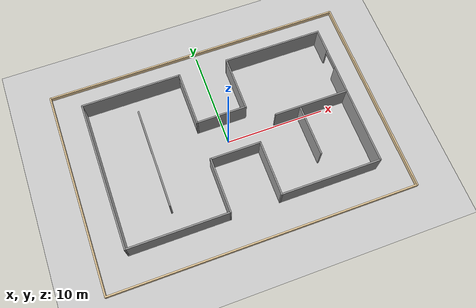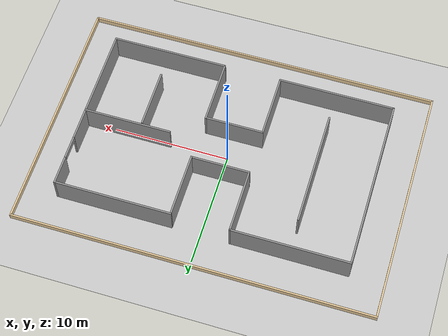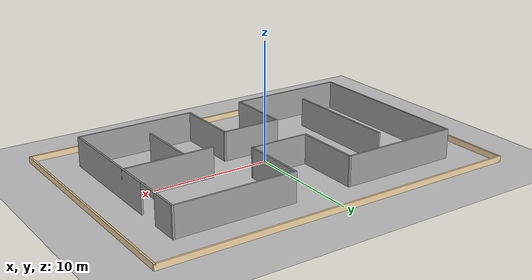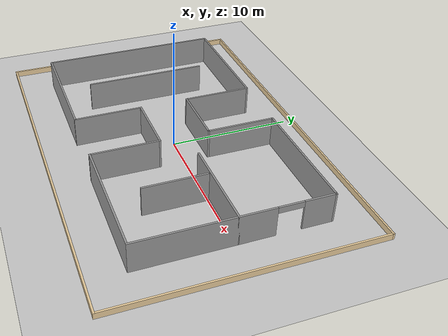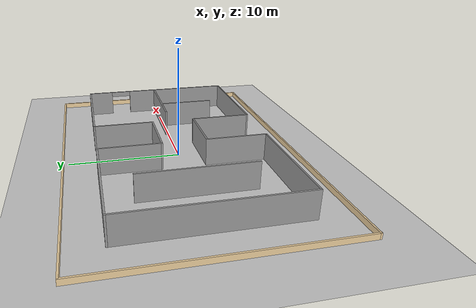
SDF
<sdf version="1.6">
 <world name="default">
  <light name="sun" type="directional">
   <pose>0 0 10 0 -0 0</pose>
   <diffuse>0.8 0.8 0.8 1</diffuse>
   <specular>0.2 0.2 0.2 1</specular>
   <attenuation>
    <range>1000</range>
    <constant>0.9</constant>
    <linear>0.01</linear>
    <quadratic>0.001</quadratic>
   </attenuation>
   <direction>-0.5 0.1 -0.9</direction>
  </light>
  <model name="ground_plane">
   <static>1</static>
   <link name="link">
    <collision name="collision">
     <geometry><plane><normal>0 0 1</normal><size>100 100</size></plane></geometry>
     <surface>
      <contact><collide_bitmask>65535</collide_bitmask></contact>
      <friction><ode><mu>100</mu><mu2>50</mu2></ode></friction>
     </surface>
    </collision>
    <visual name="visual">
     <cast_shadows>0</cast_shadows>
     <geometry><plane><normal>0 0 1</normal><size>100 100</size></plane></geometry>
     <material>
      <script><uri>file://media/materials/scripts/gazebo.material</uri><name>Gazebo/Grey</name></script>
     </material>
    </visual>
   </link>
  </model>
  <gravity>0 0 -9.8</gravity>
  <magnetic_field>6e-06 2.3e-05 -4.2e-05</magnetic_field>
  <atmosphere type="adiabatic"/>
  <physics name="default_physics" default="0" type="ode">
   <max_step_size>0.001</max_step_size>
   <real_time_factor>1</real_time_factor>
   <real_time_update_rate>1000</real_time_update_rate>
  </physics>
  <scene><ambient>0.4 0.4 0.4 1</ambient><background>0.7 0.7 0.7 1</background><shadows>1</shadows></scene>
  <audio><device>default</device></audio>
  <spherical_coordinates>
   <surface_model>EARTH_WGS84</surface_model>
   <latitude_deg>0</latitude_deg>
   <longitude_deg>0</longitude_deg>
   <elevation>0</elevation>
   <heading_deg>0</heading_deg>
  </spherical_coordinates>
  <model name="indoor_layout">
   <link name="Wall_0">
    <pose>12.5 0 0 0 -0 1.5708</pose>
    <visual name="Wall_0_Visual_0">
     <pose>-2.25008 0 1.25 0 -0 0</pose>
     <geometry><box><size>10.6498 0.15 2.5</size></box></geometry>
     <material>
      <script><uri>file://media/materials/scripts/gazebo.material</uri><name>Gazebo/Grey</name></script>
      <ambient>1 1 1 1</ambient>
     </material>
     <meta><layer>0</layer></meta>
    </visual>
    <collision name="Wall_0_Collision_0">
     <geometry><box><size>10.6498 0.15 2.5</size></box></geometry>
     <pose>-2.25008 0 1.25 0 -0 0</pose>
    </collision>
    <visual name="Wall_0_Visual_1">
     <pose>6.32492 0 1.25 0 -0 0</pose>
     <geometry><box><size>2.50017 0.15 2.5</size></box></geometry>
     <material>
      <script><uri>file://media/materials/scripts/gazebo.material</uri><name>Gazebo/Grey</name></script>
      <ambient>1 1 1 1</ambient>
     </material>
     <meta><layer>0</layer></meta>
    </visual>
    <collision name="Wall_0_Collision_1">
     <geometry><box><size>2.50017 0.15 2.5</size></box></geometry>
     <pose>6.32492 0 1.25 0 -0 0</pose>
    </collision>
    <visual name="Wall_0_Visual_2">
     <pose>4.07483 0 2.25 0 -0 0</pose>
     <geometry><box><size>2 0.15 0.5</size></box></geometry>
     <material>
      <script><uri>file://media/materials/scripts/gazebo.material</uri><name>Gazebo/Grey</name></script>
      <ambient>1 1 1 1</ambient>
     </material>
     <meta><layer>0</layer></meta>
    </visual>
    <collision name="Wall_0_Collision_2">
     <geometry><box><size>2 0.15 0.5</size></box></geometry>
     <pose>4.07483 0 2.25 0 -0 0</pose>
    </collision>
   </link>
   <link name="Wall_10">
    <collision name="Wall_10_Collision">
     <geometry><box><size>5.15 0.15 2.5</size></box></geometry>
     <pose>0 0 1.25 0 -0 0</pose>
    </collision>
    <visual name="Wall_10_Visual">
     <pose>0 0 1.25 0 -0 0</pose>
     <geometry><box><size>5.15 0.15 2.5</size></box></geometry>
     <material>
      <script><uri>file://media/materials/scripts/gazebo.material</uri><name>Gazebo/Grey</name></script>
      <ambient>1 1 1 1</ambient>
     </material>
     <meta><layer>0</layer></meta>
    </visual>
    <pose>-0 -2 0 0 -0 3.14159</pose>
   </link>
   <link name="Wall_12">
    <collision name="Wall_12_Collision">
     <geometry><box><size>5.15 0.15 2.5</size></box></geometry>
     <pose>0 0 1.25 0 -0 0</pose>
    </collision>
    <visual name="Wall_12_Visual">
     <pose>0 0 1.25 0 -0 0</pose>
     <geometry><box><size>5.15 0.15 2.5</size></box></geometry>
     <material>
      <script><uri>file://media/materials/scripts/gazebo.material</uri><name>Gazebo/Grey</name></script>
      <ambient>1 1 1 1</ambient>
     </material>
     <meta><layer>0</layer></meta>
    </visual>
    <pose>-0 2 0 0 -0 3.14159</pose>
   </link>
   <link name="Wall_14">
    <collision name="Wall_14_Collision">
     <geometry><box><size>5.65 0.15 2.5</size></box></geometry>
     <pose>0 0 1.25 0 -0 0</pose>
    </collision>
    <visual name="Wall_14_Visual">
     <pose>0 0 1.25 0 -0 0</pose>
     <geometry><box><size>5.65 0.15 2.5</size></box></geometry>
     <material>
      <script><uri>file://media/materials/scripts/gazebo.material</uri><name>Gazebo/Grey</name></script>
      <ambient>1 1 1 1</ambient>
     </material>
     <meta><layer>0</layer></meta>
    </visual>
    <pose>-2.5 -4.75 0 0 -0 1.5708</pose>
   </link>
   <link name="Wall_16">
    <collision name="Wall_16_Collision">
     <geometry><box><size>10.15 0.15 2.5</size></box></geometry>
     <pose>0 0 1.25 0 -0 0</pose>
    </collision>
    <visual name="Wall_16_Visual">
     <pose>0 0 1.25 0 -0 0</pose>
     <geometry><box><size>10.15 0.15 2.5</size></box></geometry>
     <material>
      <script><uri>file://media/materials/scripts/gazebo.material</uri><name>Gazebo/Grey</name></script>
      <ambient>1 1 1 1</ambient>
     </material>
     <meta><layer>0</layer></meta>
    </visual>
    <pose>-7.5 -7.5 0 0 -0 0</pose>
   </link>
   <link name="Wall_18">
    <collision name="Wall_18_Collision">
     <geometry><box><size>15.15 0.15 2.5</size></box></geometry>
     <pose>0 0 1.25 0 -0 0</pose>
    </collision>
    <visual name="Wall_18_Visual">
     <pose>0 0 1.25 0 -0 0</pose>
     <geometry><box><size>15.15 0.15 2.5</size></box></geometry>
     <material>
      <script><uri>file://media/materials/scripts/gazebo.material</uri><name>Gazebo/Grey</name></script>
      <ambient>1 1 1 1</ambient>
     </material>
     <meta><layer>0</layer></meta>
    </visual>
    <pose>-12.5 0 0 0 -0 -1.5708</pose>
   </link>
   <link name="Wall_2">
    <collision name="Wall_2_Collision">
     <geometry><box><size>10.15 0.15 2.5</size></box></geometry>
     <pose>0 0 1.25 0 -0 0</pose>
    </collision>
    <visual name="Wall_2_Visual">
     <pose>0 0 1.25 0 -0 0</pose>
     <geometry><box><size>10.15 0.15 2.5</size></box></geometry>
     <material>
      <script><uri>file://media/materials/scripts/gazebo.material</uri><name>Gazebo/Grey</name></script>
      <ambient>1 1 1 1</ambient>
     </material>
     <meta><layer>0</layer></meta>
    </visual>
    <pose>7.5 -7.5 0 0 -0 3.14159</pose>
   </link>
   <link name="Wall_20">
    <collision name="Wall_20_Collision">
     <geometry><box><size>10.15 0.15 2.5</size></box></geometry>
     <pose>0 0 1.25 0 -0 0</pose>
    </collision>
    <visual name="Wall_20_Visual">
     <pose>0 0 1.25 0 -0 0</pose>
     <geometry><box><size>10.15 0.15 2.5</size></box></geometry>
     <material>
      <script><uri>file://media/materials/scripts/gazebo.material</uri><name>Gazebo/Grey</name></script>
      <ambient>1 1 1 1</ambient>
     </material>
     <meta><layer>0</layer></meta>
    </visual>
    <pose>-7.5 7.5 0 0 -0 3.14159</pose>
   </link>
   <link name="Wall_22">
    <collision name="Wall_22_Collision">
     <geometry><box><size>5.65 0.15 2.5</size></box></geometry>
     <pose>0 0 1.25 0 -0 0</pose>
    </collision>
    <visual name="Wall_22_Visual">
     <pose>0 0 1.25 0 -0 0</pose>
     <geometry><box><size>5.65 0.15 2.5</size></box></geometry>
     <material>
      <script><uri>file://media/materials/scripts/gazebo.material</uri><name>Gazebo/Grey</name></script>
      <ambient>1 1 1 1</ambient>
     </material>
     <meta><layer>0</layer></meta>
    </visual>
    <pose>-2.5 4.75 0 0 -0 1.5708</pose>
   </link>
   <link name="Wall_24">
    <collision name="Wall_24_Collision">
     <geometry><box><size>7.65 0.15 2.5</size></box></geometry>
     <pose>0 0 1.25 0 -0 0</pose>
    </collision>
    <visual name="Wall_24_Visual">
     <pose>0 0 1.25 0 -0 0</pose>
     <geometry><box><size>7.65 0.15 2.5</size></box></geometry>
     <material>
      <script><uri>file://media/materials/scripts/gazebo.material</uri><name>Gazebo/Grey</name></script>
      <ambient>1 1 1 1</ambient>
     </material>
     <meta><layer>0</layer></meta>
    </visual>
    <pose>8.75 0.221 0 0 -0 0</pose>
   </link>
   <link name="Wall_26">
    <collision name="Wall_26_Collision">
     <geometry><box><size>5.15 0.15 2.5</size></box></geometry>
     <pose>0 0 1.25 0 -0 0</pose>
    </collision>
    <visual name="Wall_26_Visual">
     <pose>0 0 1.25 0 -0 0</pose>
     <geometry><box><size>5.15 0.15 2.5</size></box></geometry>
     <material>
      <script><uri>file://media/materials/scripts/gazebo.material</uri><name>Gazebo/Grey</name></script>
      <ambient>1 1 1 1</ambient>
     </material>
     <meta><layer>0</layer></meta>
    </visual>
    <pose>7.5 -2.5 0 0 -0 -1.5708</pose>
   </link>
   <link name="Wall_28">
    <collision name="Wall_28_Collision">
     <geometry><box><size>10.15 0.15 2.5</size></box></geometry>
     <pose>0 0 1.25 0 -0 0</pose>
    </collision>
    <visual name="Wall_28_Visual">
     <pose>0 0 1.25 0 -0 0</pose>
     <geometry><box><size>10.15 0.15 2.5</size></box></geometry>
     <material>
      <script><uri>file://media/materials/scripts/gazebo.material</uri><name>Gazebo/Grey</name></script>
      <ambient>1 1 1 1</ambient>
     </material>
     <meta><layer>0</layer></meta>
    </visual>
    <pose>-7.5 0 0 0 -0 1.5708</pose>
   </link>
   <link name="Wall_30">
    <collision name="Wall_30_Collision">
     <geometry><box><size>31.15 0.15 0.5</size></box></geometry>
     <pose>0 0 0.25 0 -0 0</pose>
    </collision>
    <visual name="Wall_30_Visual">
     <pose>0 0 0.25 0 -0 0</pose>
     <geometry><box><size>31.15 0.15 0.5</size></box></geometry>
     <material>
      <script><uri>file://media/materials/scripts/gazebo.material</uri><name>Gazebo/Grey</name></script>
      <ambient>0.921569 0.807843 0.615686 1</ambient>
     </material>
     <meta><layer>0</layer></meta>
    </visual>
    <pose>-0 10.5 0 0 -0 0</pose>
   </link>
   <link name="Wall_32">
    <collision name="Wall_32_Collision">
     <geometry><box><size>21.15 0.15 0.5</size></box></geometry>
     <pose>0 0 0.25 0 -0 0</pose>
    </collision>
    <visual name="Wall_32_Visual">
     <pose>0 0 0.25 0 -0 0</pose>
     <geometry><box><size>21.15 0.15 0.5</size></box></geometry>
     <material>
      <script><uri>file://media/materials/scripts/gazebo.material</uri><name>Gazebo/Grey</name></script>
      <ambient>0.921569 0.807843 0.615686 1</ambient>
     </material>
     <meta><layer>0</layer></meta>
    </visual>
    <pose>15.5 0 0 0 -0 1.5708</pose>
   </link>
   <link name="Wall_34">
    <collision name="Wall_34_Collision">
     <geometry><box><size>31.15 0.15 0.5</size></box></geometry>
     <pose>0 0 0.25 0 -0 0</pose>
    </collision>
    <visual name="Wall_34_Visual">
     <pose>0 0 0.25 0 -0 0</pose>
     <geometry><box><size>31.15 0.15 0.5</size></box></geometry>
     <material>
      <script><uri>file://media/materials/scripts/gazebo.material</uri><name>Gazebo/Grey</name></script>
      <ambient>0.921569 0.807843 0.615686 1</ambient>
     </material>
     <meta><layer>0</layer></meta>
    </visual>
    <pose>-0 -10.5 0 0 -0 3.14159</pose>
   </link>
   <link name="Wall_36">
    <collision name="Wall_36_Collision">
     <geometry><box><size>21.15 0.15 0.5</size></box></geometry>
     <pose>0 0 0.25 0 -0 0</pose>
    </collision>
    <visual name="Wall_36_Visual">
     <pose>0 0 0.25 0 -0 0</pose>
     <geometry><box><size>21.15 0.15 0.5</size></box></geometry>
     <material>
      <script><uri>file://media/materials/scripts/gazebo.material</uri><name>Gazebo/Grey</name></script>
      <ambient>0.921569 0.807843 0.615686 1</ambient>
     </material>
     <meta><layer>0</layer></meta>
    </visual>
    <pose>-15.5 0 0 0 -0 1.5708</pose>
   </link>
   <link name="Wall_4">
    <collision name="Wall_4_Collision">
     <geometry><box><size>10.15 0.15 2.5</size></box></geometry>
     <pose>0 0 1.25 0 -0 0</pose>
    </collision>
    <visual name="Wall_4_Visual">
     <pose>0 0 1.25 0 -0 0</pose>
     <geometry><box><size>10.15 0.15 2.5</size></box></geometry>
     <material>
      <script><uri>file://media/materials/scripts/gazebo.material</uri><name>Gazebo/Grey</name></script>
      <ambient>1 1 1 1</ambient>
     </material>
     <meta><layer>0</layer></meta>
    </visual>
    <pose>7.5 7.5 0 0 -0 3.14159</pose>
   </link>
   <link name="Wall_6">
    <collision name="Wall_6_Collision">
     <geometry><box><size>5.65 0.15 2.5</size></box></geometry>
     <pose>0 0 1.25 0 -0 0</pose>
    </collision>
    <visual name="Wall_6_Visual">
     <pose>0 0 1.25 0 -0 0</pose>
     <geometry><box><size>5.65 0.15 2.5</size></box></geometry>
     <material>
      <script><uri>file://media/materials/scripts/gazebo.material</uri><name>Gazebo/Grey</name></script>
      <ambient>1 1 1 1</ambient>
     </material>
     <meta><layer>0</layer></meta>
    </visual>
    <pose>2.5 -4.75 0 0 -0 1.5708</pose>
   </link>
   <link name="Wall_8">
    <collision name="Wall_8_Collision">
     <geometry><box><size>5.65 0.15 2.5</size></box></geometry>
     <pose>0 0 1.25 0 -0 0</pose>
    </collision>
    <visual name="Wall_8_Visual">
     <pose>0 0 1.25 0 -0 0</pose>
     <geometry><box><size>5.65 0.15 2.5</size></box></geometry>
     <material>
      <script><uri>file://media/materials/scripts/gazebo.material</uri><name>Gazebo/Grey</name></script>
      <ambient>1 1 1 1</ambient>
     </material>
     <meta><layer>0</layer></meta>
    </visual>
    <pose>2.5 4.75 0 0 -0 -1.5708</pose>
   </link>
   <static>1</static>
  </model>
 </world>
</sdf>
